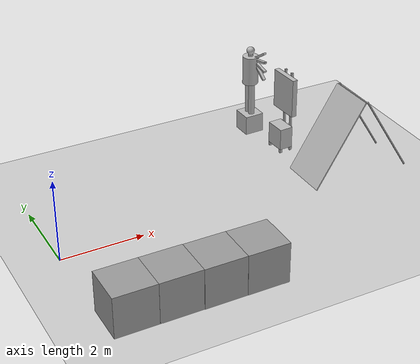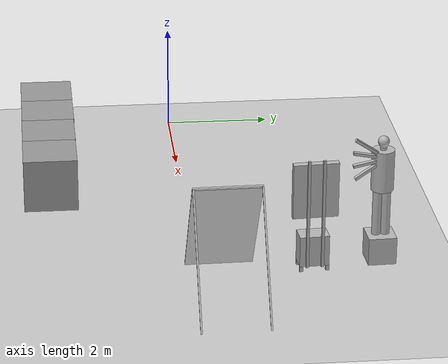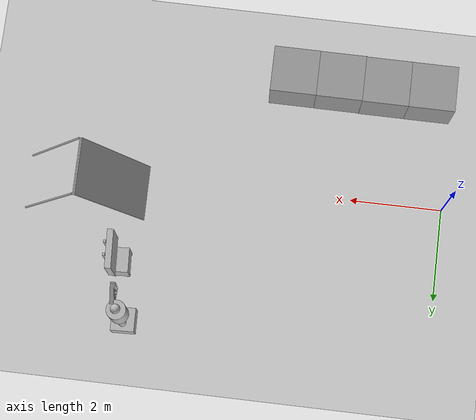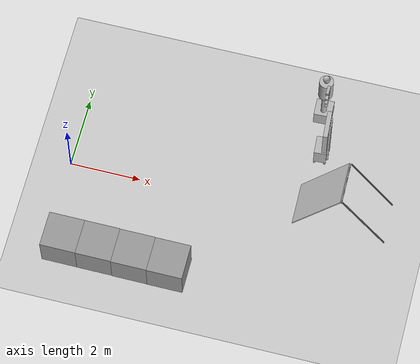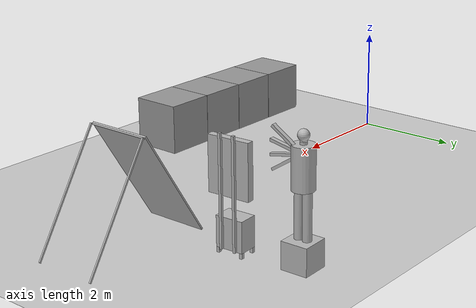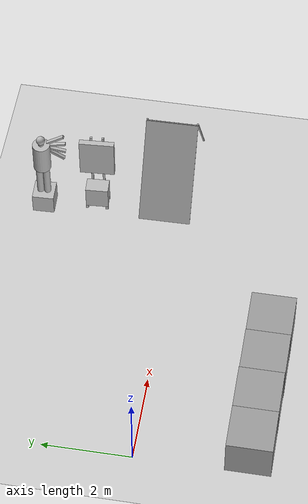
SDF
<sdf version="1.7">
 <world name="default">
  <light name="sun" type="directional">
   <pose>0 0 10 0 -0 0</pose>
   <diffuse>0.8 0.8 0.8 1</diffuse>
   <specular>0.2 0.2 0.2 1</specular>
   <attenuation>
    <range>1000</range>
    <constant>0.9</constant>
    <linear>0.01</linear>
    <quadratic>0.001</quadratic>
   </attenuation>
   <direction>-0.5 0.1 -0.9</direction>
   <spot><inner_angle>0</inner_angle><outer_angle>0</outer_angle><falloff>0</falloff></spot>
  </light>
  <model name="ground_plane">
   <static>1</static>
   <link name="link">
    <collision name="collision">
     <geometry><plane><normal>0 0 1</normal><size>100 100</size></plane></geometry>
     <surface>
      <contact><collide_bitmask>65535</collide_bitmask></contact>
      <friction><ode><mu>100</mu><mu2>50</mu2></ode></friction>
     </surface>
    </collision>
    <visual name="visual">
     <cast_shadows>0</cast_shadows>
     <geometry><plane><normal>0 0 1</normal><size>100 100</size></plane></geometry>
     <material>
      <script><uri>file://media/materials/scripts/gazebo.material</uri><name>Gazebo/Grey</name></script>
     </material>
    </visual>
   </link>
  </model>
  <gravity>0 0 -9.8</gravity>
  <magnetic_field>6e-06 2.3e-05 -4.2e-05</magnetic_field>
  <atmosphere type="adiabatic"/>
  <physics type="ode">
   <max_step_size>0.001</max_step_size>
   <real_time_factor>1</real_time_factor>
   <real_time_update_rate>1000</real_time_update_rate>
  </physics>
  <scene><ambient>0.4 0.4 0.4 1</ambient><background>0.7 0.7 0.7 1</background><shadows>1</shadows></scene>
  <audio><device>default</device></audio>
  <spherical_coordinates>
   <surface_model>EARTH_WGS84</surface_model>
   <latitude_deg>0</latitude_deg>
   <longitude_deg>0</longitude_deg>
   <elevation>0</elevation>
   <heading_deg>0</heading_deg>
  </spherical_coordinates>
  <model name="unit_box">
   <pose>3.50917 -2.49612 0.499995 1e-05 -0 -0.001501</pose>
   <link name="link">
    <inertial>
     <mass>1</mass>
     <inertia>
      <ixx>0.166667</ixx>
      <ixy>0</ixy>
      <ixz>0</ixz>
      <iyy>0.166667</iyy>
      <iyz>0</iyz>
      <izz>0.166667</izz>
     </inertia>
    </inertial>
    <collision name="collision"><geometry><box><size>1 1 1</size></box></geometry></collision>
    <visual name="visual">
     <geometry><box><size>1 1 1</size></box></geometry>
     <material>
      <script><name>Gazebo/Grey</name><uri>file://media/materials/scripts/gazebo.material</uri></script>
     </material>
    </visual>
   </link>
  </model>
  <model name="unit_box_0">
   <pose>0.509106 -2.4779 0.499995 -1e-05 0 -0.001476</pose>
   <link name="link">
    <inertial>
     <mass>1</mass>
     <inertia>
      <ixx>0.166667</ixx>
      <ixy>0</ixy>
      <ixz>0</ixz>
      <iyy>0.166667</iyy>
      <iyz>0</iyz>
      <izz>0.166667</izz>
     </inertia>
    </inertial>
    <collision name="collision"><geometry><box><size>1 1 1</size></box></geometry></collision>
    <visual name="visual">
     <geometry><box><size>1 1 1</size></box></geometry>
     <material>
      <script><name>Gazebo/Grey</name><uri>file://media/materials/scripts/gazebo.material</uri></script>
     </material>
    </visual>
   </link>
  </model>
  <model name="unit_box_1">
   <pose>1.50916 -2.48079 0.499995 0 -1e-05 -0.001533</pose>
   <link name="link">
    <inertial>
     <mass>1</mass>
     <inertia>
      <ixx>0.166667</ixx>
      <ixy>0</ixy>
      <ixz>0</ixz>
      <iyy>0.166667</iyy>
      <iyz>0</iyz>
      <izz>0.166667</izz>
     </inertia>
    </inertial>
    <collision name="collision"><geometry><box><size>1 1 1</size></box></geometry></collision>
    <visual name="visual">
     <geometry><box><size>1 1 1</size></box></geometry>
     <material>
      <script><name>Gazebo/Grey</name><uri>file://media/materials/scripts/gazebo.material</uri></script>
     </material>
    </visual>
   </link>
  </model>
  <model name="unit_box_2">
   <pose>2.50917 -2.49037 0.5 0 0 -0.001492</pose>
   <link name="link">
    <inertial>
     <mass>1</mass>
     <inertia>
      <ixx>0.166667</ixx>
      <ixy>0</ixy>
      <ixz>0</ixz>
      <iyy>0.166667</iyy>
      <iyz>0</iyz>
      <izz>0.166667</izz>
     </inertia>
    </inertial>
    <collision name="collision"><geometry><box><size>1 1 1</size></box></geometry></collision>
    <visual name="visual">
     <geometry><box><size>1 1 1</size></box></geometry>
     <material>
      <script><name>Gazebo/Grey</name><uri>file://media/materials/scripts/gazebo.material</uri></script>
     </material>
    </visual>
   </link>
  </model>
  <model name="obstacle">
   <link name="obstacle_base_link">
    <inertial>
     <pose>0.071351 0 1.02703 0 -0 0</pose>
     <mass>18.5</mass>
     <inertia>
      <ixx>10.6991</ixx>
      <ixy>0</ixy>
      <ixz>0.467029</ixz>
      <iyy>16.8745</iyy>
      <iyz>0</iyz>
      <izz>14.1723</izz>
     </inertia>
    </inertial>
    <collision name="obstacle_base_link_fixed_joint_lump__left_obs_leg_collision">
     <pose>-0.66 0.585 1 0 -1.01229 0</pose>
     <geometry><box><size>2.4 0.03 0.03</size></box></geometry>
    </collision>
    <collision name="obstacle_base_link_fixed_joint_lump__obstacle_base_collision_1">
     <pose>0.66 0 1 0 1.01229 0</pose>
     <geometry><box><size>2.4 1.2 0.03</size></box></geometry>
    </collision>
    <collision name="obstacle_base_link_fixed_joint_lump__obs_cylinder_collision_2">
     <pose>0 0 2 1.5708 -0 0</pose>
     <geometry><cylinder><length>1.2</length><radius>0.015</radius></cylinder></geometry>
    </collision>
    <collision name="obstacle_base_link_fixed_joint_lump__right_obs_leg_collision_3">
     <pose>-0.66 -0.585 1 0 -1.01229 0</pose>
     <geometry><box><size>2.4 0.03 0.03</size></box></geometry>
    </collision>
    <visual name="obstacle_base_link_fixed_joint_lump__left_obs_leg_visual">
     <pose>-0.66 0.585 1 0 -1.01229 0</pose>
     <geometry><box><size>2.4 0.03 0.03</size></box></geometry>
    </visual>
    <visual name="obstacle_base_link_fixed_joint_lump__obstacle_base_visual_1">
     <pose>0.66 0 1 0 1.01229 0</pose>
     <geometry><box><size>2.4 1.2 0.03</size></box></geometry>
    </visual>
    <visual name="obstacle_base_link_fixed_joint_lump__obs_cylinder_visual_2">
     <pose>0 0 2 1.5708 -0 0</pose>
     <geometry><cylinder><length>1.2</length><radius>0.015</radius></cylinder></geometry>
    </visual>
    <visual name="obstacle_base_link_fixed_joint_lump__right_obs_leg_visual_3">
     <pose>-0.66 -0.585 1 0 -1.01229 0</pose>
     <geometry><box><size>2.4 0.03 0.03</size></box></geometry>
    </visual>
   </link>
   <pose>7.7272 0.381488 0.025603 1e-06 2e-06 -3.12827</pose>
  </model>
  <model name="obstacle_vms">
   <link name="obs_vms_base_link">
    <inertial>
     <pose>-0.082955 -0 0.903409 0 -0 0</pose>
     <mass>88</mass>
     <inertia>
      <ixx>39.8428</ixx>
      <ixy>1.84196e-17</ixy>
      <ixz>2.85081</ixz>
      <iyy>37.8452</iyy>
      <iyz>-1.1733e-16</iyz>
      <izz>4.15895</izz>
     </inertia>
    </inertial>
    <collision name="obs_vms_base_link_fixed_joint_lump__obs_vms_base_collision">
     <pose>0 0 0.375 0 -0 0</pose>
     <geometry><box><size>0.35 0.523 0.56</size></box></geometry>
    </collision>
    <collision name="obs_vms_base_link_fixed_joint_lump__obs_vms_base_back_left_foot_collision_1">
     <pose>-0.145 0.2315 0.0475 0 -0 0</pose>
     <geometry><box><size>0.06 0.06 0.095</size></box></geometry>
    </collision>
    <collision name="obs_vms_base_link_fixed_joint_lump__obs_vms_base_back_right_foot_collision_2">
     <pose>-0.145 -0.2315 0.0475 0 -0 0</pose>
     <geometry><box><size>0.06 0.06 0.095</size></box></geometry>
    </collision>
    <collision name="obs_vms_base_link_fixed_joint_lump__obs_vms_base_front_left_foot_collision_3">
     <pose>0.145 0.2315 0.0475 0 -0 0</pose>
     <geometry><box><size>0.06 0.06 0.095</size></box></geometry>
    </collision>
    <collision name="obs_vms_base_link_fixed_joint_lump__obs_vms_base_front_right_foot_collision_4">
     <pose>0.145 -0.2315 0.0475 0 -0 0</pose>
     <geometry><box><size>0.06 0.06 0.095</size></box></geometry>
    </collision>
    <collision name="obs_vms_base_link_fixed_joint_lump__obs_vms_pole_left_collision_5">
     <pose>-0.2 0.134 1.1 0 -0 0</pose>
     <geometry><box><size>0.05 0.05 2.01</size></box></geometry>
    </collision>
    <collision name="obs_vms_base_link_fixed_joint_lump__obs_vms_pole_right_collision_6">
     <pose>-0.2 -0.134 1.1 0 -0 0</pose>
     <geometry><box><size>0.05 0.05 2.01</size></box></geometry>
    </collision>
    <collision name="obs_vms_base_link_fixed_joint_lump__obs_vms_collision_7">
     <pose>-0.11 0 1.529 0 -0 0</pose>
     <geometry><box><size>0.13 0.8 0.998</size></box></geometry>
    </collision>
    <visual name="obs_vms_base_link_fixed_joint_lump__obs_vms_base_visual">
     <pose>0 0 0.375 0 -0 0</pose>
     <geometry><box><size>0.35 0.523 0.56</size></box></geometry>
    </visual>
    <visual name="obs_vms_base_link_fixed_joint_lump__obs_vms_base_back_left_foot_visual_1">
     <pose>-0.145 0.2315 0.0475 0 -0 0</pose>
     <geometry><box><size>0.06 0.06 0.095</size></box></geometry>
    </visual>
    <visual name="obs_vms_base_link_fixed_joint_lump__obs_vms_base_back_right_foot_visual_2">
     <pose>-0.145 -0.2315 0.0475 0 -0 0</pose>
     <geometry><box><size>0.06 0.06 0.095</size></box></geometry>
    </visual>
    <visual name="obs_vms_base_link_fixed_joint_lump__obs_vms_base_front_left_foot_visual_3">
     <pose>0.145 0.2315 0.0475 0 -0 0</pose>
     <geometry><box><size>0.06 0.06 0.095</size></box></geometry>
    </visual>
    <visual name="obs_vms_base_link_fixed_joint_lump__obs_vms_base_front_right_foot_visual_4">
     <pose>0.145 -0.2315 0.0475 0 -0 0</pose>
     <geometry><box><size>0.06 0.06 0.095</size></box></geometry>
    </visual>
    <visual name="obs_vms_base_link_fixed_joint_lump__obs_vms_pole_left_visual_5">
     <pose>-0.2 0.134 1.1 0 -0 0</pose>
     <geometry><box><size>0.05 0.05 2.01</size></box></geometry>
    </visual>
    <visual name="obs_vms_base_link_fixed_joint_lump__obs_vms_pole_right_visual_6">
     <pose>-0.2 -0.134 1.1 0 -0 0</pose>
     <geometry><box><size>0.05 0.05 2.01</size></box></geometry>
    </visual>
    <visual name="obs_vms_base_link_fixed_joint_lump__obs_vms_visual_7">
     <pose>-0.11 0 1.529 0 -0 0</pose>
     <geometry><box><size>0.13 0.8 0.998</size></box></geometry>
    </visual>
   </link>
   <pose>6.73094 1.9854 1e-06 0 3e-06 -3.08193</pose>
  </model>
  <model name="signalman">
   <link name="signalman_base_link">
    <inertial>
     <pose>-0.005222 0.015666 0.815437 0 -0 0</pose>
     <mass>15.32</mass>
     <inertia>
      <ixx>7.83972</ixx>
      <ixy>0.0227467</ixy>
      <ixz>0.072765</ixz>
      <iyy>7.74009</iyy>
      <iyz>-0.218295</iyz>
      <izz>0.438825</izz>
     </inertia>
    </inertial>
    <collision name="signalman_base_link_fixed_joint_lump__signalman_base_collision">
     <geometry><box><size>0.5 0.5 0.5</size></box></geometry>
    </collision>
    <collision name="signalman_base_link_fixed_joint_lump__signalman_left_leg_collision_1">
     <pose>0 0.08 0.675 0 -0 0</pose>
     <geometry><cylinder><length>0.85</length><radius>0.08</radius></cylinder></geometry>
    </collision>
    <collision name="signalman_base_link_fixed_joint_lump__signalman_upper_body_collision_2">
     <pose>0 0 1.475 0 -0 0</pose>
     <geometry><cylinder><length>0.75</length><radius>0.2</radius></cylinder></geometry>
    </collision>
    <collision name="signalman_base_link_fixed_joint_lump__signalman_1st_arm_collision_3">
     <pose>-0.1 0.3 1.95 0 -0.589049 1.5708</pose>
     <geometry><box><size>0.5 0.08 0.05</size></box></geometry>
    </collision>
    <collision name="signalman_base_link_fixed_joint_lump__signalman_2nd_arm_collision_4">
     <pose>-0.1 0.3 1.8 0 -0.19635 1.5708</pose>
     <geometry><box><size>0.5 0.08 0.05</size></box></geometry>
    </collision>
    <collision name="signalman_base_link_fixed_joint_lump__signalman_3rd_arm_collision_5">
     <pose>-0.1 0.3 1.65 0 0.19635 1.5708</pose>
     <geometry><box><size>0.5 0.08 0.05</size></box></geometry>
    </collision>
    <collision name="signalman_base_link_fixed_joint_lump__signalman_4th_arm_collision_6">
     <pose>-0.1 0.3 1.5 0 0.589049 1.5708</pose>
     <geometry><box><size>0.5 0.08 0.05</size></box></geometry>
    </collision>
    <collision name="signalman_base_link_fixed_joint_lump__signalman_neck_collision_7">
     <pose>0 0 1.875 0 -0 0</pose>
     <geometry><cylinder><length>0.05</length><radius>0.06</radius></cylinder></geometry>
    </collision>
    <collision name="signalman_base_link_fixed_joint_lump__signalman_head_collision_8">
     <pose>0 0 2 0 -0 0</pose>
     <geometry><sphere><radius>0.1</radius></sphere></geometry>
    </collision>
    <collision name="signalman_base_link_fixed_joint_lump__signalman_right_leg_collision_9">
     <pose>0 -0.08 0.675 0 -0 0</pose>
     <geometry><cylinder><length>0.85</length><radius>0.08</radius></cylinder></geometry>
    </collision>
    <visual name="signalman_base_link_fixed_joint_lump__signalman_base_visual">
     <geometry><box><size>0.5 0.5 0.5</size></box></geometry>
    </visual>
    <visual name="signalman_base_link_fixed_joint_lump__signalman_left_leg_visual_1">
     <pose>0 0.08 0.675 0 -0 0</pose>
     <geometry><cylinder><length>0.85</length><radius>0.08</radius></cylinder></geometry>
    </visual>
    <visual name="signalman_base_link_fixed_joint_lump__signalman_upper_body_visual_2">
     <pose>0 0 1.475 0 -0 0</pose>
     <geometry><cylinder><length>0.75</length><radius>0.2</radius></cylinder></geometry>
    </visual>
    <visual name="signalman_base_link_fixed_joint_lump__signalman_1st_arm_visual_3">
     <pose>-0.1 0.3 1.95 0 -0.589049 1.5708</pose>
     <geometry><box><size>0.5 0.08 0.05</size></box></geometry>
    </visual>
    <visual name="signalman_base_link_fixed_joint_lump__signalman_2nd_arm_visual_4">
     <pose>-0.1 0.3 1.8 0 -0.19635 1.5708</pose>
     <geometry><box><size>0.5 0.08 0.05</size></box></geometry>
    </visual>
    <visual name="signalman_base_link_fixed_joint_lump__signalman_3rd_arm_visual_5">
     <pose>-0.1 0.3 1.65 0 0.19635 1.5708</pose>
     <geometry><box><size>0.5 0.08 0.05</size></box></geometry>
    </visual>
    <visual name="signalman_base_link_fixed_joint_lump__signalman_4th_arm_visual_6">
     <pose>-0.1 0.3 1.5 0 0.589049 1.5708</pose>
     <geometry><box><size>0.5 0.08 0.05</size></box></geometry>
    </visual>
    <visual name="signalman_base_link_fixed_joint_lump__signalman_neck_visual_7">
     <pose>0 0 1.875 0 -0 0</pose>
     <geometry><cylinder><length>0.05</length><radius>0.06</radius></cylinder></geometry>
    </visual>
    <visual name="signalman_base_link_fixed_joint_lump__signalman_head_visual_8">
     <pose>0 0 2 0 -0 0</pose>
     <geometry><sphere><radius>0.1</radius></sphere></geometry>
    </visual>
    <visual name="signalman_base_link_fixed_joint_lump__signalman_right_leg_visual_9">
     <pose>0 -0.08 0.675 0 -0 0</pose>
     <geometry><cylinder><length>0.85</length><radius>0.08</radius></cylinder></geometry>
    </visual>
   </link>
   <pose>6.52285 3.21149 0.25 -0 -1e-06 -3.10724</pose>
  </model>
 </world>
</sdf>
